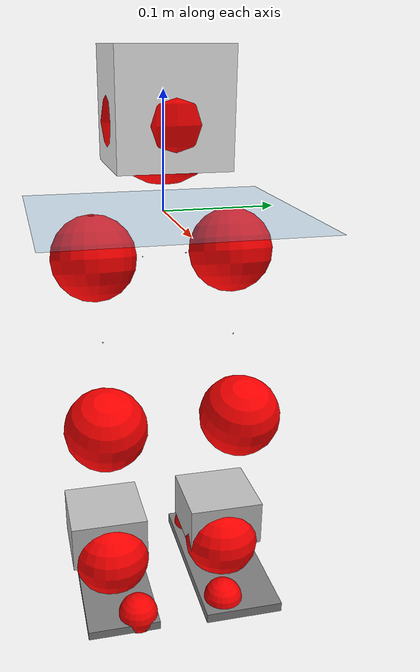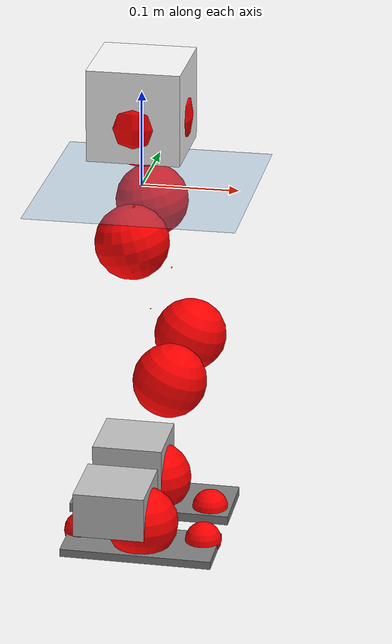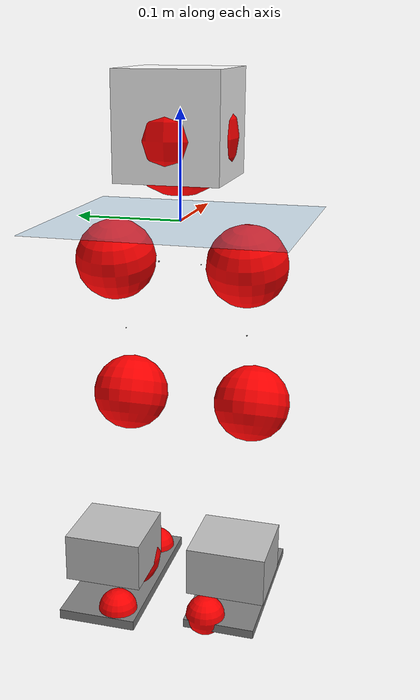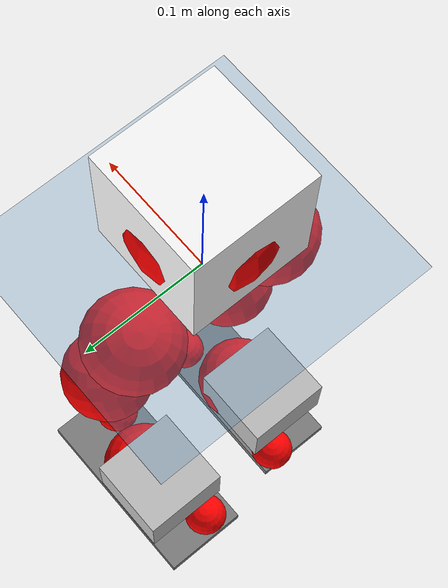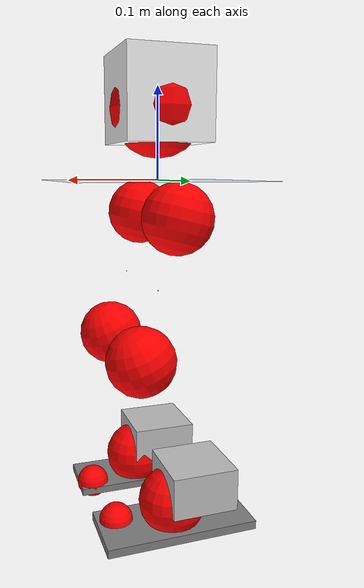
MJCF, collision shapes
<mujoco model="pi_12dof_release_v1">
  <compiler angle="radian" assetdir="assets" balanceinertia="true" inertiafromgeom="false"/>

  <option timestep="0.005" density="1.2" viscosity="2e-05"/>

  <size nkey="1"/>

  <visual>
    <quality shadowsize="8192"/>
    <map shadowclip="0.5"/>
  </visual>

  <default>
    <default class="/">
      <joint armature="0.01" damping="0.01" frictionloss="0.01"/>
      <geom contype="0" conaffinity="0" group="1" solref="-1000 -80"/>
      <site size="0.01 0.005 0.005" group="5"/>
      <general forcelimited="true" biastype="affine" gainprm="20" biasprm="0 -20 -0.5"/>
      <default class="foot">
        <geom size="0.0845 0.036 0.005" type="box" condim="6" group="4" priority="1" friction="0.9 0.2 0.2" solimp="0.015 1 0.005"/>
      </default>
      <default class="reward_collision_sphere">
        <geom group="5" rgba="1 0 0 1"/>
      </default>
    </default>
  </default>

  <asset>
    <texture type="skybox" colorspace="auto" name="//unnamed_texture_0" builtin="gradient" rgb1="0.95 0.95 0.95" rgb2="0.95 0.95 0.95" width="100" height="600"/>
    <texture type="2d" colorspace="auto" name="texplane" builtin="checker" rgb1="0.345 0.575 0.748" rgb2="0.345 0.575 0.748" markrgb="1 1 1" width="512" height="512"/>
    <material name="MatPlane" class="/" texture="texplane" texuniform="true" texrepeat="2 2" specular="0.9"/>
    <mesh name="baselink_1" class="/" file="baselink_1.STL"/>
    <mesh name="r_hip_pitch_link" class="/" file="r_hip_pitch_link.STL"/>
    <mesh name="r_hip_roll_link" class="/" file="r_hip_roll_link.STL"/>
    <mesh name="r_thigh_link" class="/" file="r_thigh_link.STL"/>
    <mesh name="r_calf_link" class="/" file="r_calf_link.STL"/>
    <mesh name="r_ankle_pitch_link" class="/" file="r_ankle_pitch_link.STL"/>
    <mesh name="r_ankle_roll_link" class="/" file="r_ankle_roll_link.STL"/>
    <mesh name="l_hip_pitch_link" class="/" file="l_hip_pitch_link.STL"/>
    <mesh name="l_hip_roll_link" class="/" file="l_hip_roll_link.STL"/>
    <mesh name="l_thigh_link" class="/" file="l_thigh_link.STL"/>
    <mesh name="l_calf_link" class="/" file="l_calf_link.STL"/>
    <mesh name="l_ankle_pitch_link" class="/" file="l_ankle_pitch_link.STL"/>
    <mesh name="l_ankle_roll_link" class="/" file="l_ankle_roll_link.STL"/>
  </asset>

  <worldbody>
    <geom name="floor" class="/" size="100 100 0.125" type="plane" group="0" material="MatPlane"/>
    <light name="toplight_shadow" class="/" pos="0 0 5" dir="0.0990148 0.0990148 -0.990148" type="directional" ambient="0.04 0.04 0.04" diffuse="0.55 0.55 0.55" specular="0.12 0.12 0.12"/>
    <light name="toplight_fill" class="/" pos="0 0 5" dir="0.0990148 0.0990148 -0.990148" type="directional" castshadow="false" ambient="0.04 0.04 0.04" diffuse="0.3 0.3 0.3" specular="0.08 0.08 0.08"/>
    <body name="trunk" pos="-0.000127388 0.000103356 -0.00225579" quat="1 0.000179534 1.84375e-05 0.000202534">
      <inertial pos="0.00203142 0.00249816 0.0474393" quat="0.695602 0.00940956 0.00967296 0.718301" mass="1.84182" diaginertia="0.00807189 0.0028508 0.00700172"/>
      <joint name="//unnamed_joint_0" type="free"/>
      <geom name="//unnamed_geom_1" class="/" type="mesh" density="0" rgba="1 1 1 1" mesh="baselink_1"/>
      <geom name="//unnamed_geom_2" class="/" size="0.0477921 0.0477921 0.0477921" pos="0 0 0.0890646" type="box" rgba="1 1 1 1"/>
      <geom name="//unnamed_geom_3" class="reward_collision_sphere" size="0.0525714" pos="0 0 0.0779316"/>
      <site name="imu" class="/" pos="-0.00157165 -0.00644442 -0.000419402" size="0.00955843"/>
      <camera name="track" class="/" pos="0 -1.59279 0" quat="0.707107 0.707107 0 0" mode="trackcom"/>
      <camera name="ego_camera" class="/" pos="0.0718371 0 0.200395" quat="-0.5 -0.5 0.5 0.5"/>
      <body name="r_hip_pitch_link" pos="0.00166069 -0.0195794 -0.0374954" quat="0.992202 4.26284e-05 -0.124638 -0.000303446">
        <inertial pos="-0.00174452 -0.0438514 -0.000798299" quat="-0.0155311 0.705758 -0.0255208 0.707823" mass="0.329615" diaginertia="8.81953e-05 3.12331e-05 0.000145913"/>
        <joint name="r_hip_pitch_joint" class="/" pos="0 0 0" axis="0.0120096 -0.999919 0.00431698" stiffness="0.00904285" range="-1.73407 1.20757" armature="0.00887245" damping="0.00529222" frictionloss="0.00839344"/>
        <geom name="//unnamed_geom_4" class="/" type="mesh" density="0" rgba="0.75294 0.75294 0.75294 1" mesh="r_hip_pitch_link"/>
        <geom name="//unnamed_geom_5" class="/" size="0.000477921 0.000477921 0.000477921" type="box" rgba="0.75294 0.75294 0.75294 1"/>
        <body name="r_hip_roll_link" pos="0.000813765 -0.0436504 0.00105502" quat="1 0.000142812 4.83187e-05 4.30407e-05">
          <inertial pos="-0.00143932 -0.000259939 -0.0698774" quat="0.706559 -0.0771252 -0.0818885 0.698656" mass="0.323694" diaginertia="0.000269046 8.87685e-05 0.000205184"/>
          <joint name="r_hip_roll_joint" class="/" pos="0 0 0" axis="-0.999928 -0.0103562 -0.00612078" range="-0.12093 0.504038" armature="0.0100171" damping="0.0121374" frictionloss="0.010238"/>
          <geom name="//unnamed_geom_6" class="/" type="mesh" density="0" rgba="0.75294 0.75294 0.75294 1" mesh="r_hip_roll_link"/>
          <geom name="//unnamed_geom_7" class="/" size="0.000477921 0.000477921 0.000477921" type="box" rgba="0.75294 0.75294 0.75294 1"/>
          <geom name="//unnamed_geom_8" class="reward_collision_sphere" size="0.0382337"/>
          <body name="r_thigh_link" pos="1.5544e-06 0.00288679 -0.074576" quat="0.999999 0.000123261 0.000134153 -0.001365">
            <inertial pos="-4.22996e-05 0.000786015 -0.053518" quat="0.737299 0.675566 -0.000496154 0.000156651" mass="0.0956641" diaginertia="0.000100744 2.96659e-05 9.61415e-05"/>
            <joint name="r_thigh_joint" class="/" pos="0 0 0" axis="0.000415008 0.000137237 -1" range="-0.301862 0.549385" armature="0.0108469" damping="0.00357375" frictionloss="0.00974739"/>
            <geom name="//unnamed_geom_9" class="/" type="mesh" density="0" rgba="0.75294 0.75294 0.75294 1" mesh="r_thigh_link"/>
            <geom name="//unnamed_geom_10" class="/" size="0.000477921 0.000477921 0.000477921" type="box" rgba="0.75294 0.75294 0.75294 1"/>
            <body name="r_calf_link" pos="0.000699034 -0.00262882 -0.0793953" quat="0.947451 0.000898586 0.319899 -0.000781624">
              <inertial pos="-0.000814752 -0.00184543 -0.076608" quat="0.999983 -0.002688 0.000223761 0.00511314" mass="0.68064" diaginertia="0.00273952 0.00107028 0.000298173"/>
              <joint name="r_calf_joint" class="/" pos="0 0 0" axis="-0.0112855 -0.999895 0.00905227" stiffness="0.0104396" range="-1.65861 0.645278" armature="0.00947933" damping="0.00920569" frictionloss="0.00991958"/>
              <geom name="//unnamed_geom_11" class="/" type="mesh" density="0" rgba="0.75294 0.75294 0.75294 1" mesh="r_calf_link"/>
              <geom name="//unnamed_geom_12" class="/" size="0.000477921 0.000477921 0.000477921" type="box" rgba="0.75294 0.75294 0.75294 1"/>
              <geom name="//unnamed_geom_13" class="reward_collision_sphere" size="0.0382337"/>
              <body name="r_ankle_pitch_link" pos="0.00311821 0.00218607 -0.155509" quat="0.980057 -0.000126383 -0.198715 0.000280899">
                <inertial pos="0.00452661 0.00385532 -0.000282469" quat="0.0020566 0.706508 -0.00303667 0.707695" mass="0.156683" diaginertia="0.000247054 7.293e-05 0.000208532"/>
                <joint name="r_ankle_pitch_joint" class="/" pos="0 0 0" axis="0.000575539 -0.999999 -0.00117713" range="-1.33582 0.511538" armature="0.00970769" damping="0.0237374" frictionloss="0.0108528"/>
                <geom name="//unnamed_geom_14" class="/" type="mesh" density="0" rgba="0.75294 0.75294 0.75294 1" mesh="r_ankle_pitch_link"/>
                <geom name="//unnamed_geom_15" class="/" size="0.0372779 0.0382337 0.0238961" type="box" rgba="0.75294 0.75294 0.75294 1"/>
                <body name="r_ankle_roll_link" pos="0.0755382 0.00201484 0.00156107" quat="1 9.54445e-05 0.000168601 -0.00046008">
                  <inertial pos="-0.02306 0.00109214 -0.013494" quat="0.558821 0.430065 0.432406 0.561951" mass="0.437885" diaginertia="0.000926852 0.000326919 0.000479406"/>
                  <joint name="r_ankle_roll_joint" class="/" pos="0 0 0" axis="-0.999994 0.00289591 0.00182855" range="-0.163157 0.170547" armature="0.00955717" damping="0.00845403" frictionloss="0.0107743"/>
                  <geom name="//unnamed_geom_16" class="/" type="mesh" density="0" rgba="0.75294 0.75294 0.75294 1" mesh="r_ankle_roll_link"/>
                  <geom name="//unnamed_geom_17" class="/" type="mesh" rgba="0.75294 0.75294 0.75294 1" mesh="r_ankle_roll_link"/>
                  <geom name="right_foot" class="foot" size="0.0795453 0.0345407 0.00422254" pos="-0.0488492 0 -0.0489855"/>
                  <geom name="//unnamed_geom_19" class="reward_collision_sphere" size="0.0382337" pos="-0.0478914 0 -0.0222662"/>
                  <geom name="//unnamed_geom_20" class="reward_collision_sphere" size="0.0191169" pos="0.0143674 0.0159279 -0.0445323"/>
                  <geom name="//unnamed_geom_21" class="reward_collision_sphere" size="0.0191169" pos="-0.114939 0.0159279 -0.0445323"/>
                  <site name="right_foot" class="foot" pos="-0.0488492 0 -0.0489855" size="0.00955843"/>
                </body>
              </body>
            </body>
          </body>
        </body>
      </body>
      <body name="l_hip_pitch_link" pos="-0.000396674 0.0206164 -0.0366289" quat="0.992139 0.000151392 -0.125142 -2.94836e-06">
        <inertial pos="6.94687e-05 0.040102 -0.0013298" quat="-0.0351171 0.71211 0.0354685 0.700291" mass="0.330218" diaginertia="0.000103037 3.45084e-05 0.000171257"/>
        <joint name="l_hip_pitch_joint" class="/" pos="0 0 0" axis="-0.00176714 0.999998 0.000404133" range="-1.19639 1.69669" armature="0.0103892" damping="0.0164353" frictionloss="0.0082777"/>
        <geom name="//unnamed_geom_22" class="/" type="mesh" density="0" rgba="0.75294 0.75294 0.75294 1" mesh="l_hip_pitch_link"/>
        <geom name="//unnamed_geom_23" class="/" size="0.000477921 0.000477921 0.000477921" type="box" rgba="0.75294 0.75294 0.75294 1"/>
        <body name="l_hip_roll_link" pos="-0.000748095 0.0419854 0.000329764" quat="1 0.000124436 -8.28975e-05 -0.000265772">
          <inertial pos="-0.000318733 -0.00223776 -0.0678568" quat="0.699383 -0.07525 -0.0779763 0.706484" mass="0.33943" diaginertia="0.000281502 9.0448e-05 0.000229754"/>
          <joint name="l_hip_roll_joint" class="/" pos="0 0 0" axis="-1 2.16102e-05 0.000110463" range="-0.450973 0.0635503" armature="0.00920121" damping="0.00516145" frictionloss="0.00936553"/>
          <geom name="//unnamed_geom_24" class="/" type="mesh" density="0" rgba="0.75294 0.75294 0.75294 1" mesh="l_hip_roll_link"/>
          <geom name="//unnamed_geom_25" class="/" size="0.000477921 0.000477921 0.000477921" type="box" rgba="0.75294 0.75294 0.75294 1"/>
          <geom name="//unnamed_geom_26" class="reward_collision_sphere" size="0.0382337"/>
          <body name="l_thigh_link" pos="0.00196321 -0.00137415 -0.076977" quat="0.999999 -0.00106222 0.00089175 9.2591e-05">
            <inertial pos="0.00289546 -0.00115985 -0.0551312" quat="0.675302 0.737541 -0.000337109 0.000327435" mass="0.0977799" diaginertia="0.000104394 3.22778e-05 0.000104882"/>
            <joint name="l_thigh_joint" class="/" pos="0 0 0" axis="0.00453151 0.00289937 -0.999986" range="-0.618682 0.245183" armature="0.00939166" damping="0.018797" frictionloss="0.00847355"/>
            <geom name="//unnamed_geom_27" class="/" type="mesh" density="0" rgba="0.75294 0.75294 0.75294 1" mesh="l_thigh_link"/>
            <geom name="//unnamed_geom_28" class="/" size="0.000477921 0.000477921 0.000477921" type="box" rgba="0.75294 0.75294 0.75294 1"/>
            <body name="l_calf_link" pos="0.000572389 0.0026913 -0.0777137" quat="0.947288 0.000320904 0.320383 0.000787268">
              <inertial pos="-0.000680004 0.00318225 -0.0790073" quat="0.999972 0.000429612 -0.00106265 -0.00740502" mass="0.700458" diaginertia="0.00283033 0.00108138 0.00029049"/>
              <joint name="l_calf_joint" class="/" pos="0 0 0" axis="0.00236768 0.999985 0.00488916" stiffness="0.00175341" range="-0.670092 1.63654" armature="0.00937756" damping="0.00296806" frictionloss="0.00866554"/>
              <geom name="//unnamed_geom_29" class="/" type="mesh" density="0" rgba="0.75294 0.75294 0.75294 1" mesh="l_calf_link"/>
              <geom name="//unnamed_geom_30" class="/" size="0.000477921 0.000477921 0.000477921" type="box" rgba="0.75294 0.75294 0.75294 1"/>
              <geom name="//unnamed_geom_31" class="reward_collision_sphere" size="0.0382337"/>
              <body name="l_ankle_pitch_link" pos="0.000563525 -0.000150343 -0.158097" quat="0.980096 0.000362627 -0.198525 0.00010135">
                <inertial pos="0.00466517 0.00167233 0.00118973" quat="-0.00578861 0.710489 -0.00905705 0.703626" mass="0.149537" diaginertia="0.000239809 6.8431e-05 0.000199555"/>
                <joint name="l_ankle_pitch_joint" class="/" pos="0 0 0" axis="-0.0102107 0.999899 -0.00990906" range="-0.516942 1.31017" armature="0.00979166" damping="0" frictionloss="0.0100478"/>
                <geom name="//unnamed_geom_32" class="/" type="mesh" density="0" rgba="0.75294 0.75294 0.75294 1" mesh="l_ankle_pitch_link"/>
                <geom name="//unnamed_geom_33" class="/" size="0.0372779 0.0382337 0.0238961" type="box" rgba="0.75294 0.75294 0.75294 1"/>
                <body name="l_ankle_roll_link" pos="0.0727681 -0.00195832 -0.00010667" quat="0.999999 -0.000535171 0.00109009 -0.000136592">
                  <inertial pos="-0.0234154 -0.000831267 -0.01582" quat="0.564859 0.419079 0.438551 0.559446" mass="0.432087" diaginertia="0.000889352 0.000328977 0.000493092"/>
                  <joint name="l_ankle_roll_joint" class="/" pos="0 0 0" axis="-0.999925 -0.00945068 -0.00775843" range="-0.144879 0.105109" armature="0.00943685" damping="0.00470115" frictionloss="0.00837664"/>
                  <geom name="//unnamed_geom_34" class="/" type="mesh" density="0" rgba="0.75294 0.75294 0.75294 1" mesh="l_ankle_roll_link"/>
                  <geom name="//unnamed_geom_35" class="/" type="mesh" rgba="0.75294 0.75294 0.75294 1" mesh="l_ankle_roll_link"/>
                  <geom name="left_foot" class="foot" size="0.0858757 0.0382942 0.00481683" pos="-0.0488492 0 -0.0489855"/>
                  <geom name="//unnamed_geom_37" class="reward_collision_sphere" size="0.0382337" pos="-0.0478914 0 -0.0222662"/>
                  <geom name="//unnamed_geom_38" class="reward_collision_sphere" size="0.0191169" pos="0.0143674 -0.0159279 -0.0445323"/>
                  <geom name="//unnamed_geom_39" class="reward_collision_sphere" size="0.0191169" pos="-0.114939 -0.0159279 -0.0445323"/>
                  <site name="left_foot" class="foot" pos="-0.0488492 0 -0.0489855" size="0.00955843"/>
                </body>
              </body>
            </body>
          </body>
        </body>
      </body>
    </body>
  </worldbody>

  <contact>
    <pair class="/" geom1="floor" geom2="right_foot" name="//unnamed_contact_1"/>
    <pair class="/" geom1="floor" geom2="left_foot" name="//unnamed_contact_0"/>
  </contact>

  <actuator>
    <general name="r_hip_pitch_joint" class="/" joint="r_hip_pitch_joint" forcerange="-18.4252 18.4252" gainprm="19.1102" biasprm="0 -19.1102 -0.469602"/>
    <general name="r_hip_roll_joint" class="/" joint="r_hip_roll_joint" forcerange="-20.1644 20.1644" gainprm="19.1102" biasprm="0 -19.1102 -0.469602"/>
    <general name="r_thigh_joint" class="/" joint="r_thigh_joint" forcerange="-18.8485 18.8485" gainprm="19.1102" biasprm="0 -19.1102 -0.469602"/>
    <general name="r_calf_joint" class="/" joint="r_calf_joint" forcerange="-19.7426 19.7426" gainprm="19.1102" biasprm="0 -19.1102 -0.469602"/>
    <general name="r_ankle_pitch_joint" class="/" joint="r_ankle_pitch_joint" forcerange="-21.4584 21.4584" gainprm="19.1102" biasprm="0 -19.1102 -0.469602"/>
    <general name="r_ankle_roll_joint" class="/" joint="r_ankle_roll_joint" forcerange="-22.1472 22.1472" gainprm="19.1102" biasprm="0 -19.1102 -0.469602"/>
    <general name="l_hip_pitch_joint" class="/" joint="l_hip_pitch_joint" forcerange="-19.1191 19.1191" gainprm="19.1102" biasprm="0 -19.1102 -0.469602"/>
    <general name="l_hip_roll_joint" class="/" joint="l_hip_roll_joint" forcerange="-18.1964 18.1964" gainprm="19.1102" biasprm="0 -19.1102 -0.469602"/>
    <general name="l_thigh_joint" class="/" joint="l_thigh_joint" forcerange="-19.3807 19.3807" gainprm="19.1102" biasprm="0 -19.1102 -0.469602"/>
    <general name="l_calf_joint" class="/" joint="l_calf_joint" forcerange="-20.5682 20.5682" gainprm="19.1102" biasprm="0 -19.1102 -0.469602"/>
    <general name="l_ankle_pitch_joint" class="/" joint="l_ankle_pitch_joint" forcerange="-19.7806 19.7806" gainprm="19.1102" biasprm="0 -19.1102 -0.469602"/>
    <general name="l_ankle_roll_joint" class="/" joint="l_ankle_roll_joint" forcerange="-19.5354 19.5354" gainprm="19.1102" biasprm="0 -19.1102 -0.469602"/>
  </actuator>

  <sensor>
    <gyro site="imu" name="imu_angular_velocity"/>
    <velocimeter site="imu" name="imu_linear_velocity"/>
    <framelinvel objtype="site" objname="left_foot" name="left_foot_global_linear_velocity"/>
    <framelinvel objtype="site" objname="right_foot" name="right_foot_global_linear_velocity"/>
  </sensor>

  <keyframe>
    <key name="home" qpos="0 0 0.291 1 0 0 0 0.4 0 0 -0.8 0.4 0 -0.4 0 0 0.8 -0.4 0"/>
  </keyframe>
</mujoco>
